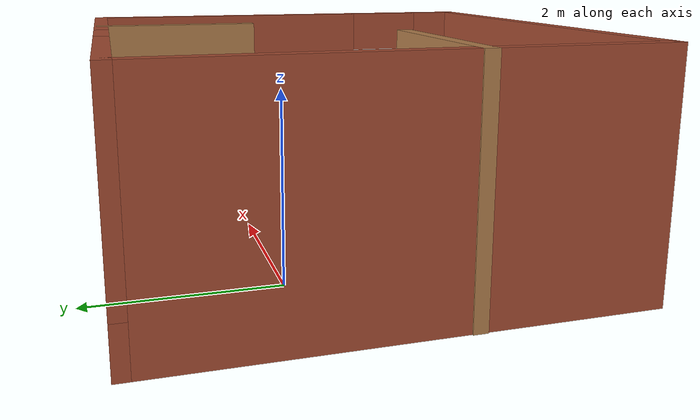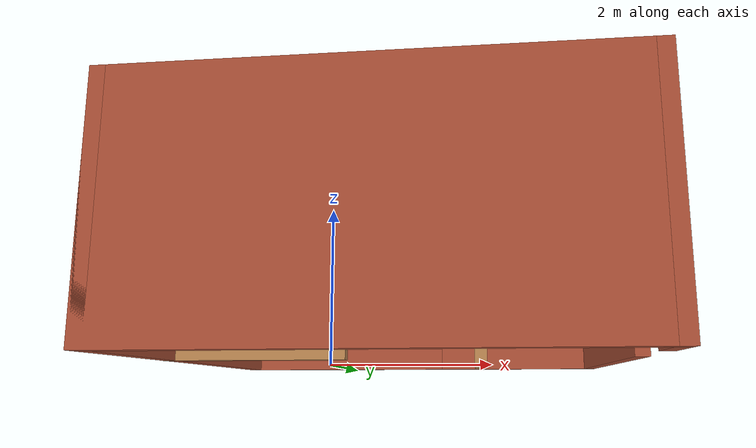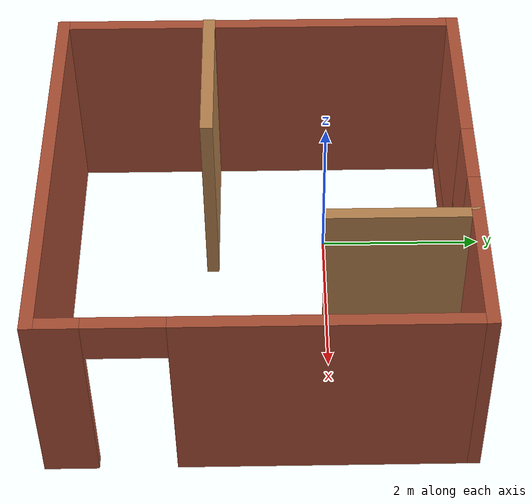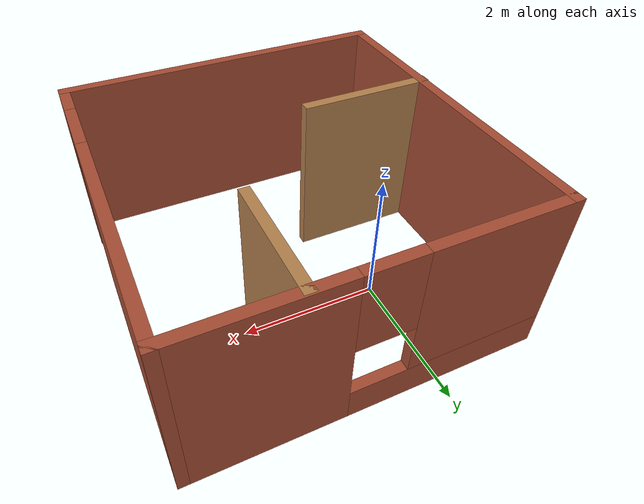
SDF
<?xml version='1.0'?>
<sdf version='1.7'>
  <model name='map1'>
    <pose>0.967588 -0.805 0 0 -0 0</pose>
    <link name='Wall_14'>
      <collision name='Wall_14_Collision'>
        <geometry>
          <box>
            <size>5 0.15 2.5</size>
          </box>
        </geometry>
        <pose>0 0 1.25 0 -0 0</pose>
      </collision>
      <visual name='Wall_14_Visual'>
        <pose>0 0 1.25 0 -0 0</pose>
        <geometry>
          <box>
            <size>5 0.15 2.5</size>
          </box>
        </geometry>
        <material>
          <script>
            <uri>file://media/materials/scripts/gazebo.material</uri>
            <name>Gazebo/Bricks</name>
          </script>
          <ambient>1 1 1 1</ambient>
        </material>
        <meta>
          <layer>0</layer>
        </meta>
      </visual>
      <pose>-2.41759 0 0 0 -0 -1.5708</pose>
    </link>
    <link name='Wall_16'>
      <collision name='Wall_16_Collision'>
        <geometry>
          <box>
            <size>5 0.15 2.5</size>
          </box>
        </geometry>
        <pose>0 0 1.25 0 -0 0</pose>
      </collision>
      <visual name='Wall_16_Visual'>
        <pose>0 0 1.25 0 -0 0</pose>
        <geometry>
          <box>
            <size>5 0.15 2.5</size>
          </box>
        </geometry>
        <material>
          <script>
            <uri>file://media/materials/scripts/gazebo.material</uri>
            <name>Gazebo/Bricks</name>
          </script>
          <ambient>1 1 1 1</ambient>
        </material>
        <meta>
          <layer>0</layer>
        </meta>
      </visual>
      <pose>0.007412 -2.425 0 0 -0 0</pose>
    </link>
    <link name='Wall_19'>
      <collision name='Wall_19_Collision'>
        <geometry>
          <box>
            <size>1.75 0.15 2.5</size>
          </box>
        </geometry>
        <pose>0 0 1.25 0 -0 0</pose>
      </collision>
      <visual name='Wall_19_Visual'>
        <pose>0 0 1.25 0 -0 0</pose>
        <geometry>
          <box>
            <size>1.75 0.15 2.5</size>
          </box>
        </geometry>
        <material>
          <script>
            <uri>file://media/materials/scripts/gazebo.material</uri>
            <name>Gazebo/Wood</name>
          </script>
          <ambient>1 1 1 1</ambient>
        </material>
        <meta>
          <layer>0</layer>
        </meta>
      </visual>
      <pose>0.900287 1.60105 0 0 -0 -1.5708</pose>
    </link>
    <link name='Wall_22'>
      <collision name='Wall_22_Collision'>
        <geometry>
          <box>
            <size>2 0.15 2.5</size>
          </box>
        </geometry>
        <pose>0 0 1.25 0 -0 0</pose>
      </collision>
      <visual name='Wall_22_Visual'>
        <pose>0 0 1.25 0 -0 0</pose>
        <geometry>
          <box>
            <size>2 0.15 2.5</size>
          </box>
        </geometry>
        <material>
          <script>
            <uri>file://media/materials/scripts/gazebo.material</uri>
            <name>Gazebo/Wood</name>
          </script>
          <ambient>1 1 1 1</ambient>
        </material>
        <meta>
          <layer>0</layer>
        </meta>
      </visual>
      <pose>-1.50741 -0.61425 0 0 -0 0</pose>
    </link>
    <link name='Wall_6'>
      <pose>2.43241 0 0 0 -0 1.5708</pose>
      <visual name='Wall_6_Visual_0'>
        <pose>-2.18549 0 1.25 0 -0 0</pose>
        <geometry>
          <box>
            <size>0.629025 0.15 2.5</size>
          </box>
        </geometry>
        <material>
          <script>
            <uri>file://media/materials/scripts/gazebo.material</uri>
            <name>Gazebo/Bricks</name>
          </script>
          <ambient>1 1 1 1</ambient>
        </material>
        <meta>
          <layer>0</layer>
        </meta>
      </visual>
      <collision name='Wall_6_Collision_0'>
        <geometry>
          <box>
            <size>0.629025 0.15 2.5</size>
          </box>
        </geometry>
        <pose>-2.18549 0 1.25 0 -0 0</pose>
      </collision>
      <visual name='Wall_6_Visual_1'>
        <pose>0.764512 0 1.25 0 -0 0</pose>
        <geometry>
          <box>
            <size>3.47098 0.15 2.5</size>
          </box>
        </geometry>
        <material>
          <script>
            <uri>file://media/materials/scripts/gazebo.material</uri>
            <name>Gazebo/Bricks</name>
          </script>
          <ambient>1 1 1 1</ambient>
        </material>
        <meta>
          <layer>0</layer>
        </meta>
      </visual>
      <collision name='Wall_6_Collision_1'>
        <geometry>
          <box>
            <size>3.47098 0.15 2.5</size>
          </box>
        </geometry>
        <pose>0.764512 0 1.25 0 -0 0</pose>
      </collision>
      <visual name='Wall_6_Visual_2'>
        <pose>-1.42098 0 2.25 0 -0 0</pose>
        <geometry>
          <box>
            <size>0.9 0.15 0.5</size>
          </box>
        </geometry>
        <material>
          <script>
            <uri>file://media/materials/scripts/gazebo.material</uri>
            <name>Gazebo/Bricks</name>
          </script>
          <ambient>1 1 1 1</ambient>
        </material>
        <meta>
          <layer>0</layer>
        </meta>
      </visual>
      <collision name='Wall_6_Collision_2'>
        <geometry>
          <box>
            <size>0.9 0.15 0.5</size>
          </box>
        </geometry>
        <pose>-1.42098 0 2.25 0 -0 0</pose>
      </collision>
    </link>
    <link name='Wall_7'>
      <pose>0.007412 2.425 0 0 -0 3.14159</pose>
      <visual name='Wall_7_Visual_0'>
        <pose>-1.42034 0 1.25 0 -0 0</pose>
        <geometry>
          <box>
            <size>2.15932 0.15 2.5</size>
          </box>
        </geometry>
        <material>
          <script>
            <uri>file://media/materials/scripts/gazebo.material</uri>
            <name>Gazebo/Bricks</name>
          </script>
          <ambient>1 1 1 1</ambient>
        </material>
        <meta>
          <layer>0</layer>
        </meta>
      </visual>
      <collision name='Wall_7_Collision_0'>
        <geometry>
          <box>
            <size>2.15932 0.15 2.5</size>
          </box>
        </geometry>
        <pose>-1.42034 0 1.25 0 -0 0</pose>
      </collision>
      <visual name='Wall_7_Visual_1'>
        <pose>1.07966 0 0.25 0 -0 0</pose>
        <geometry>
          <box>
            <size>2.84068 0.15 0.5</size>
          </box>
        </geometry>
        <material>
          <script>
            <uri>file://media/materials/scripts/gazebo.material</uri>
            <name>Gazebo/Bricks</name>
          </script>
          <ambient>1 1 1 1</ambient>
        </material>
        <meta>
          <layer>0</layer>
        </meta>
      </visual>
      <collision name='Wall_7_Collision_1'>
        <geometry>
          <box>
            <size>2.84068 0.15 0.5</size>
          </box>
        </geometry>
        <pose>1.07966 0 0.25 0 -0 0</pose>
      </collision>
      <visual name='Wall_7_Visual_2'>
        <pose>1.47966 0 1.5 0 -0 0</pose>
        <geometry>
          <box>
            <size>2.04067 0.15 2</size>
          </box>
        </geometry>
        <material>
          <script>
            <uri>file://media/materials/scripts/gazebo.material</uri>
            <name>Gazebo/Bricks</name>
          </script>
          <ambient>1 1 1 1</ambient>
        </material>
        <meta>
          <layer>0</layer>
        </meta>
      </visual>
      <collision name='Wall_7_Collision_2'>
        <geometry>
          <box>
            <size>2.04067 0.15 2</size>
          </box>
        </geometry>
        <pose>1.47966 0 1.5 0 -0 0</pose>
      </collision>
      <visual name='Wall_7_Visual_3'>
        <pose>0.059325 0 1.9 0 -0 0</pose>
        <geometry>
          <box>
            <size>0.8 0.15 1.2</size>
          </box>
        </geometry>
        <material>
          <script>
            <uri>file://media/materials/scripts/gazebo.material</uri>
            <name>Gazebo/Bricks</name>
          </script>
          <ambient>1 1 1 1</ambient>
        </material>
        <meta>
          <layer>0</layer>
        </meta>
      </visual>
      <collision name='Wall_7_Collision_3'>
        <geometry>
          <box>
            <size>0.8 0.15 1.2</size>
          </box>
        </geometry>
        <pose>0.059325 0 1.9 0 -0 0</pose>
      </collision>
    </link>
    <static>1</static>
  </model>
</sdf>
